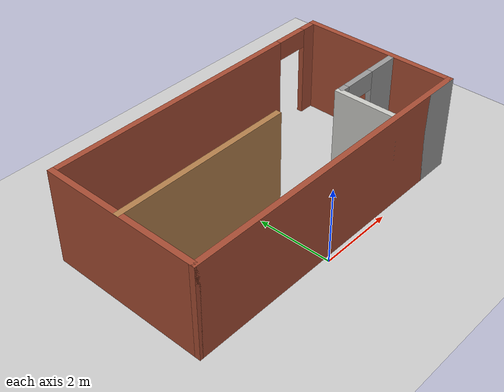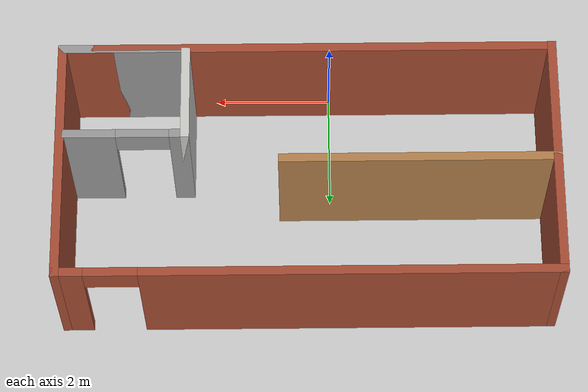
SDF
<sdf version="1.7">
 <world name="default">
  <light name="sun" type="directional">
   <pose>0 0 10 0 -0 0</pose>
   <diffuse>0.8 0.8 0.8 1</diffuse>
   <specular>0.2 0.2 0.2 1</specular>
   <attenuation>
    <range>1000</range>
    <constant>0.9</constant>
    <linear>0.01</linear>
    <quadratic>0.001</quadratic>
   </attenuation>
   <direction>-0.5 0.1 -0.9</direction>
   <spot><inner_angle>0</inner_angle><outer_angle>0</outer_angle><falloff>0</falloff></spot>
  </light>
  <model name="ground_plane">
   <static>1</static>
   <link name="link">
    <collision name="collision">
     <geometry><plane><normal>0 0 1</normal><size>100 100</size></plane></geometry>
     <surface>
      <contact><collide_bitmask>65535</collide_bitmask></contact>
      <friction><ode><mu>100</mu><mu2>50</mu2></ode></friction>
     </surface>
    </collision>
    <visual name="visual">
     <cast_shadows>0</cast_shadows>
     <geometry><plane><normal>0 0 1</normal><size>100 100</size></plane></geometry>
     <material>
      <script><uri>file://media/materials/scripts/gazebo.material</uri><name>Gazebo/Grey</name></script>
     </material>
    </visual>
   </link>
  </model>
  <gravity>0 0 -9.8</gravity>
  <magnetic_field>6e-06 2.3e-05 -4.2e-05</magnetic_field>
  <atmosphere type="adiabatic"/>
  <physics type="ode">
   <max_step_size>0.001</max_step_size>
   <real_time_factor>1</real_time_factor>
   <real_time_update_rate>1000</real_time_update_rate>
  </physics>
  <scene><ambient>0.4 0.4 0.4 1</ambient><background>0.7 0.7 0.7 1</background><shadows>1</shadows></scene>
  <spherical_coordinates>
   <surface_model>EARTH_WGS84</surface_model>
   <latitude_deg>0</latitude_deg>
   <longitude_deg>0</longitude_deg>
   <elevation>0</elevation>
   <heading_deg>0</heading_deg>
  </spherical_coordinates>
  <model name="fin_lab_v2.0">
   <pose>0.383507 2.24008 0 0 -0 0</pose>
   <link name="Wall_12">
    <collision name="Wall_12_Collision">
     <geometry><box><size>8.5 0.15 2.5</size></box></geometry>
     <pose>0 0 1.25 0 -0 0</pose>
    </collision>
    <visual name="Wall_12_Visual">
     <pose>0 0 1.25 0 -0 0</pose>
     <geometry><box><size>8.5 0.15 2.5</size></box></geometry>
     <material>
      <script><uri>file://media/materials/scripts/gazebo.material</uri><name>Gazebo/Bricks</name></script>
      <ambient>1 1 1 1</ambient>
     </material>
     <meta><layer>0</layer></meta>
    </visual>
    <pose>0 -2.05 0 0 -0 0</pose>
   </link>
   <link name="Wall_14">
    <collision name="Wall_14_Collision">
     <geometry><box><size>4.75 0.15 2.5</size></box></geometry>
     <pose>0 0 1.25 0 -0 0</pose>
    </collision>
    <visual name="Wall_14_Visual">
     <pose>0 0 1.25 0 -0 0</pose>
     <geometry><box><size>4.75 0.15 2.5</size></box></geometry>
     <material>
      <script><uri>file://media/materials/scripts/gazebo.material</uri><name>Gazebo/Wood</name></script>
      <ambient>1 1 1 1</ambient>
     </material>
     <meta><layer>0</layer></meta>
    </visual>
    <pose>-1.86941 0.022225 0 0 -0 0</pose>
   </link>
   <link name="Wall_20">
    <pose>3.125 -0.45 0 0 -0 0</pose>
    <visual name="Wall_20_Visual_0">
     <pose>-0.956529 0 1.25 0 -0 0</pose>
     <geometry><box><size>0.336941 0.15 2.5</size></box></geometry>
     <material>
      <script><uri>file://media/materials/scripts/gazebo.material</uri><name>Gazebo/Grey</name></script>
      <ambient>1 1 1 1</ambient>
     </material>
     <meta><layer>0</layer></meta>
    </visual>
    <collision name="Wall_20_Collision_0">
     <geometry><box><size>0.336941 0.15 2.5</size></box></geometry>
     <pose>-0.956529 0 1.25 0 -0 0</pose>
    </collision>
    <visual name="Wall_20_Visual_1">
     <pose>0.618471 0 1.25 0 -0 0</pose>
     <geometry><box><size>1.01306 0.15 2.5</size></box></geometry>
     <material>
      <script><uri>file://media/materials/scripts/gazebo.material</uri><name>Gazebo/Grey</name></script>
      <ambient>1 1 1 1</ambient>
     </material>
     <meta><layer>0</layer></meta>
    </visual>
    <collision name="Wall_20_Collision_1">
     <geometry><box><size>1.01306 0.15 2.5</size></box></geometry>
     <pose>0.618471 0 1.25 0 -0 0</pose>
    </collision>
    <visual name="Wall_20_Visual_2">
     <pose>-0.338059 0 2.25 0 -0 0</pose>
     <geometry><box><size>0.9 0.15 0.5</size></box></geometry>
     <material>
      <script><uri>file://media/materials/scripts/gazebo.material</uri><name>Gazebo/Grey</name></script>
      <ambient>1 1 1 1</ambient>
     </material>
     <meta><layer>0</layer></meta>
    </visual>
    <collision name="Wall_20_Collision_2">
     <geometry><box><size>0.9 0.15 0.5</size></box></geometry>
     <pose>-0.338059 0 2.25 0 -0 0</pose>
    </collision>
   </link>
   <link name="Wall_5">
    <collision name="Wall_5_Collision">
     <geometry><box><size>4.25 0.15 2.5</size></box></geometry>
     <pose>0 0 1.25 0 -0 0</pose>
    </collision>
    <visual name="Wall_5_Visual">
     <pose>0 0 1.25 0 -0 0</pose>
     <geometry><box><size>4.25 0.15 2.5</size></box></geometry>
     <material>
      <script><uri>file://media/materials/scripts/gazebo.material</uri><name>Gazebo/Bricks</name></script>
      <ambient>1 1 1 1</ambient>
     </material>
     <meta><layer>0</layer></meta>
    </visual>
    <pose>-4.175 0 0 0 -0 1.5708</pose>
   </link>
   <link name="Wall_6">
    <pose>0 2.05 0 0 -0 0</pose>
    <visual name="Wall_6_Visual_0">
     <pose>-0.71848 0 1.25 0 -0 0</pose>
     <geometry><box><size>7.06304 0.15 2.5</size></box></geometry>
     <material>
      <script><uri>file://media/materials/scripts/gazebo.material</uri><name>Gazebo/Bricks</name></script>
      <ambient>1 1 1 1</ambient>
     </material>
     <meta><layer>0</layer></meta>
    </visual>
    <collision name="Wall_6_Collision_0">
     <geometry><box><size>7.06304 0.15 2.5</size></box></geometry>
     <pose>-0.71848 0 1.25 0 -0 0</pose>
    </collision>
    <visual name="Wall_6_Visual_1">
     <pose>3.98152 0 1.25 0 -0 0</pose>
     <geometry><box><size>0.536959 0.15 2.5</size></box></geometry>
     <material>
      <script><uri>file://media/materials/scripts/gazebo.material</uri><name>Gazebo/Bricks</name></script>
      <ambient>1 1 1 1</ambient>
     </material>
     <meta><layer>0</layer></meta>
    </visual>
    <collision name="Wall_6_Collision_1">
     <geometry><box><size>0.536959 0.15 2.5</size></box></geometry>
     <pose>3.98152 0 1.25 0 -0 0</pose>
    </collision>
    <visual name="Wall_6_Visual_2">
     <pose>3.26304 0 2.25 0 -0 0</pose>
     <geometry><box><size>0.9 0.15 0.5</size></box></geometry>
     <material>
      <script><uri>file://media/materials/scripts/gazebo.material</uri><name>Gazebo/Bricks</name></script>
      <ambient>1 1 1 1</ambient>
     </material>
     <meta><layer>0</layer></meta>
    </visual>
    <collision name="Wall_6_Collision_2">
     <geometry><box><size>0.9 0.15 0.5</size></box></geometry>
     <pose>3.26304 0 2.25 0 -0 0</pose>
    </collision>
   </link>
   <link name="Wall_7">
    <collision name="Wall_7_Collision">
     <geometry><box><size>4.25 0.15 2.5</size></box></geometry>
     <pose>0 0 1.25 0 -0 0</pose>
    </collision>
    <visual name="Wall_7_Visual">
     <pose>0 0 1.25 0 -0 0</pose>
     <geometry><box><size>4.25 0.15 2.5</size></box></geometry>
     <material>
      <script><uri>file://media/materials/scripts/gazebo.material</uri><name>Gazebo/Bricks</name></script>
      <ambient>1 1 1 1</ambient>
     </material>
     <meta><layer>0</layer></meta>
    </visual>
    <pose>4.175 0 0 0 -0 -1.5708</pose>
   </link>
   <link name="Wall_8">
    <collision name="Wall_8_Collision">
     <geometry><box><size>2.25 0.15 2.5</size></box></geometry>
     <pose>0 0 1.25 0 -0 0</pose>
    </collision>
    <visual name="Wall_8_Visual">
     <pose>0 0 1.25 0 -0 0</pose>
     <geometry><box><size>2.25 0.15 2.5</size></box></geometry>
     <material>
      <script><uri>file://media/materials/scripts/gazebo.material</uri><name>Gazebo/Grey</name></script>
      <ambient>1 1 1 1</ambient>
     </material>
     <meta><layer>0</layer></meta>
    </visual>
    <pose>3.125 -2.05 0 0 -0 3.14159</pose>
   </link>
   <link name="Wall_9">
    <collision name="Wall_9_Collision">
     <geometry><box><size>1.75 0.15 2.5</size></box></geometry>
     <pose>0 0 1.25 0 -0 0</pose>
    </collision>
    <visual name="Wall_9_Visual">
     <pose>0 0 1.25 0 -0 0</pose>
     <geometry><box><size>1.75 0.15 2.5</size></box></geometry>
     <material>
      <script><uri>file://media/materials/scripts/gazebo.material</uri><name>Gazebo/CeilingTiled</name></script>
      <ambient>1 1 1 1</ambient>
     </material>
     <meta><layer>0</layer></meta>
    </visual>
    <pose>2.075 -1.25 0 0 -0 1.5708</pose>
   </link>
   <static>1</static>
  </model>
 </world>
</sdf>
